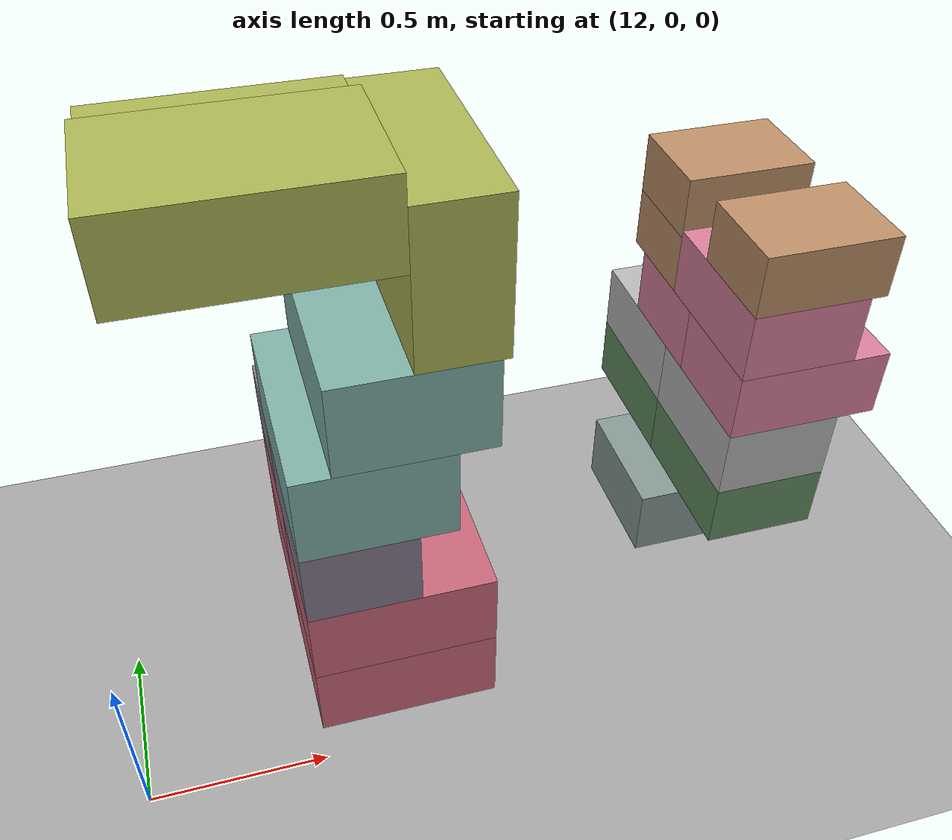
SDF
<sdf version="1.10">
 <world name="pallet_towers">
  <model name="ground_plane">
   <static>true</static>
   <link name="link">
    <collision name="collision">
     <geometry><plane><normal>0 0 1</normal><size>30 30</size></plane></geometry>
     <surface>
      <friction><ode><mu>0.35</mu><mu2>0.35</mu2></ode></friction>
      <bounce><restitution_coefficient>0</restitution_coefficient><threshold>100000</threshold></bounce>
      <contact><ode><kp>1000000</kp><kd>100</kd><max_vel>1</max_vel><min_depth>0.0005</min_depth></ode></contact>
     </surface>
    </collision>
    <visual name="visual">
     <geometry><plane><normal>0 0 1</normal><size>30 30</size></plane></geometry>
     <material><ambient>0.65 0.65 0.65 1</ambient><diffuse>0.65 0.65 0.65 1</diffuse></material>
    </visual>
   </link>
  </model>
  <model name="box_p08_0001_CARROT_001_CARROT">
   <static>false</static>
   <pose>12.75 0.6 0.259 0 0 0</pose>
   <link name="body">
    <inertial>
     <mass>12</mass>
     <inertia><ixx>0.2129</ixx><ixy>0</ixy><ixz>0</ixz><iyy>0.3029</iyy><iyz>0</iyz><izz>0.41</izz></inertia>
    </inertial>
    <collision name="collision">
     <geometry><box><size>0.5 0.4 0.23</size></box></geometry>
     <surface>
      <friction><ode><mu>0.35</mu><mu2>0.35</mu2></ode></friction>
      <bounce><restitution_coefficient>0</restitution_coefficient><threshold>100000</threshold></bounce>
      <contact><ode><kp>1000000</kp><kd>100</kd><max_vel>1</max_vel><min_depth>0.0005</min_depth></ode></contact>
     </surface>
    </collision>
    <visual name="visual">
     <geometry><box><size>0.5 0.4 0.23</size></box></geometry>
     <material>
      <ambient>0.784313725 0.4 0.474509804 1</ambient>
      <diffuse>0.784313725 0.4 0.474509804 1</diffuse>
      <specular>0.05 0.05 0.05 1</specular>
     </material>
    </visual>
   </link>
  </model>
  <model name="box_p08_0002_CARROT_002_CARROT">
   <static>false</static>
   <pose>12.75 0.2 0.259 0 0 0</pose>
   <link name="body">
    <inertial>
     <mass>12</mass>
     <inertia><ixx>0.2129</ixx><ixy>0</ixy><ixz>0</ixz><iyy>0.3029</iyy><iyz>0</iyz><izz>0.41</izz></inertia>
    </inertial>
    <collision name="collision">
     <geometry><box><size>0.5 0.4 0.23</size></box></geometry>
     <surface>
      <friction><ode><mu>0.35</mu><mu2>0.35</mu2></ode></friction>
      <bounce><restitution_coefficient>0</restitution_coefficient><threshold>100000</threshold></bounce>
      <contact><ode><kp>1000000</kp><kd>100</kd><max_vel>1</max_vel><min_depth>0.0005</min_depth></ode></contact>
     </surface>
    </collision>
    <visual name="visual">
     <geometry><box><size>0.5 0.4 0.23</size></box></geometry>
     <material>
      <ambient>0.784313725 0.4 0.474509804 1</ambient>
      <diffuse>0.784313725 0.4 0.474509804 1</diffuse>
      <specular>0.05 0.05 0.05 1</specular>
     </material>
    </visual>
   </link>
  </model>
  <model name="box_p08_0005_CARROT_005_CARROT">
   <static>false</static>
   <pose>12.75 0.2 0.489 0 0 0</pose>
   <link name="body">
    <inertial>
     <mass>12</mass>
     <inertia><ixx>0.2129</ixx><ixy>0</ixy><ixz>0</ixz><iyy>0.3029</iyy><iyz>0</iyz><izz>0.41</izz></inertia>
    </inertial>
    <collision name="collision">
     <geometry><box><size>0.5 0.4 0.23</size></box></geometry>
     <surface>
      <friction><ode><mu>0.35</mu><mu2>0.35</mu2></ode></friction>
      <bounce><restitution_coefficient>0</restitution_coefficient><threshold>100000</threshold></bounce>
      <contact><ode><kp>1000000</kp><kd>100</kd><max_vel>1</max_vel><min_depth>0.0005</min_depth></ode></contact>
     </surface>
    </collision>
    <visual name="visual">
     <geometry><box><size>0.5 0.4 0.23</size></box></geometry>
     <material>
      <ambient>0.784313725 0.4 0.474509804 1</ambient>
      <diffuse>0.784313725 0.4 0.474509804 1</diffuse>
      <specular>0.05 0.05 0.05 1</specular>
     </material>
    </visual>
   </link>
  </model>
  <model name="box_p08_0006_CARROT_006_CARROT">
   <static>false</static>
   <pose>12.75 0.6 0.489 0 0 0</pose>
   <link name="body">
    <inertial>
     <mass>12</mass>
     <inertia><ixx>0.2129</ixx><ixy>0</ixy><ixz>0</ixz><iyy>0.3029</iyy><iyz>0</iyz><izz>0.41</izz></inertia>
    </inertial>
    <collision name="collision">
     <geometry><box><size>0.5 0.4 0.23</size></box></geometry>
     <surface>
      <friction><ode><mu>0.35</mu><mu2>0.35</mu2></ode></friction>
      <bounce><restitution_coefficient>0</restitution_coefficient><threshold>100000</threshold></bounce>
      <contact><ode><kp>1000000</kp><kd>100</kd><max_vel>1</max_vel><min_depth>0.0005</min_depth></ode></contact>
     </surface>
    </collision>
    <visual name="visual">
     <geometry><box><size>0.5 0.4 0.23</size></box></geometry>
     <material>
      <ambient>0.784313725 0.4 0.474509804 1</ambient>
      <diffuse>0.784313725 0.4 0.474509804 1</diffuse>
      <specular>0.05 0.05 0.05 1</specular>
     </material>
    </visual>
   </link>
  </model>
  <model name="box_p08_0010_CUCUMBER_004_CUCUMBER">
   <static>false</static>
   <pose>12.65 0.25 0.714 0 0 0</pose>
   <link name="body">
    <inertial>
     <mass>8</mass>
     <inertia>
      <ixx>0.198933333</ixx>
      <ixy>0</ixy>
      <ixz>0</ixz>
      <iyy>0.0922666667</iyy>
      <iyz>0</iyz>
      <izz>0.226666667</izz>
     </inertia>
    </inertial>
    <collision name="collision">
     <geometry><box><size>0.3 0.5 0.22</size></box></geometry>
     <surface>
      <friction><ode><mu>0.35</mu><mu2>0.35</mu2></ode></friction>
      <bounce><restitution_coefficient>0</restitution_coefficient><threshold>100000</threshold></bounce>
      <contact><ode><kp>1000000</kp><kd>100</kd><max_vel>1</max_vel><min_depth>0.0005</min_depth></ode></contact>
     </surface>
    </collision>
    <visual name="visual">
     <geometry><box><size>0.3 0.5 0.22</size></box></geometry>
     <material>
      <ambient>0.517647059 0.478431373 0.552941176 1</ambient>
      <diffuse>0.517647059 0.478431373 0.552941176 1</diffuse>
      <specular>0.05 0.05 0.05 1</specular>
     </material>
    </visual>
   </link>
  </model>
  <model name="box_p08_0011_CUCUMBER_005_CUCUMBER">
   <static>false</static>
   <pose>12.75 0.65 0.714 0 0 0</pose>
   <link name="body">
    <inertial>
     <mass>8</mass>
     <inertia>
      <ixx>0.0922666667</ixx>
      <ixy>0</ixy>
      <ixz>0</ixz>
      <iyy>0.198933333</iyy>
      <iyz>0</iyz>
      <izz>0.226666667</izz>
     </inertia>
    </inertial>
    <collision name="collision">
     <geometry><box><size>0.5 0.3 0.22</size></box></geometry>
     <surface>
      <friction><ode><mu>0.35</mu><mu2>0.35</mu2></ode></friction>
      <bounce><restitution_coefficient>0</restitution_coefficient><threshold>100000</threshold></bounce>
      <contact><ode><kp>1000000</kp><kd>100</kd><max_vel>1</max_vel><min_depth>0.0005</min_depth></ode></contact>
     </surface>
    </collision>
    <visual name="visual">
     <geometry><box><size>0.5 0.3 0.22</size></box></geometry>
     <material>
      <ambient>0.517647059 0.478431373 0.552941176 1</ambient>
      <diffuse>0.517647059 0.478431373 0.552941176 1</diffuse>
      <specular>0.05 0.05 0.05 1</specular>
     </material>
    </visual>
   </link>
  </model>
  <model name="box_p08_0013_LETTUCE_001_LETTUCE">
   <static>false</static>
   <pose>12.7 0.3 0.949 0 0 0</pose>
   <link name="body">
    <inertial>
     <mass>5</mass>
     <inertia>
      <ixx>0.176041667</ixx>
      <ixy>0</ixy>
      <ixz>0</ixz>
      <iyy>0.0927083333</iyy>
      <iyz>0</iyz>
      <izz>0.216666667</izz>
     </inertia>
    </inertial>
    <collision name="collision">
     <geometry><box><size>0.4 0.6 0.25</size></box></geometry>
     <surface>
      <friction><ode><mu>0.35</mu><mu2>0.35</mu2></ode></friction>
      <bounce><restitution_coefficient>0</restitution_coefficient><threshold>100000</threshold></bounce>
      <contact><ode><kp>1000000</kp><kd>100</kd><max_vel>1</max_vel><min_depth>0.0005</min_depth></ode></contact>
     </surface>
    </collision>
    <visual name="visual">
     <geometry><box><size>0.4 0.6 0.25</size></box></geometry>
     <material>
      <ambient>0.498039216 0.690196078 0.650980392 1</ambient>
      <diffuse>0.498039216 0.690196078 0.650980392 1</diffuse>
      <specular>0.05 0.05 0.05 1</specular>
     </material>
    </visual>
   </link>
  </model>
  <model name="box_p08_0016_LETTUCE_004_LETTUCE">
   <static>false</static>
   <pose>12.8 0.3 1.199 0 0 0</pose>
   <link name="body">
    <inertial>
     <mass>5</mass>
     <inertia>
      <ixx>0.176041667</ixx>
      <ixy>0</ixy>
      <ixz>0</ixz>
      <iyy>0.0927083333</iyy>
      <iyz>0</iyz>
      <izz>0.216666667</izz>
     </inertia>
    </inertial>
    <collision name="collision">
     <geometry><box><size>0.4 0.6 0.25</size></box></geometry>
     <surface>
      <friction><ode><mu>0.35</mu><mu2>0.35</mu2></ode></friction>
      <bounce><restitution_coefficient>0</restitution_coefficient><threshold>100000</threshold></bounce>
      <contact><ode><kp>1000000</kp><kd>100</kd><max_vel>1</max_vel><min_depth>0.0005</min_depth></ode></contact>
     </surface>
    </collision>
    <visual name="visual">
     <geometry><box><size>0.4 0.6 0.25</size></box></geometry>
     <material>
      <ambient>0.498039216 0.690196078 0.650980392 1</ambient>
      <diffuse>0.498039216 0.690196078 0.650980392 1</diffuse>
      <specular>0.05 0.05 0.05 1</specular>
     </material>
    </visual>
   </link>
  </model>
  <model name="box_p08_0019_ORANGE_001_ORANGE">
   <static>false</static>
   <pose>12.5 0.2 1.684 0 0 0</pose>
   <link name="body">
    <inertial>
     <mass>13</mass>
     <inertia>
      <ixx>0.225766667</ixx>
      <ixy>0</ixy>
      <ixz>0</ixz>
      <iyy>0.442433333</iyy>
      <iyz>0</iyz>
      <izz>0.563333333</izz>
     </inertia>
    </inertial>
    <collision name="collision">
     <geometry><box><size>0.6 0.4 0.22</size></box></geometry>
     <surface>
      <friction><ode><mu>0.35</mu><mu2>0.35</mu2></ode></friction>
      <bounce><restitution_coefficient>0</restitution_coefficient><threshold>100000</threshold></bounce>
      <contact><ode><kp>1000000</kp><kd>100</kd><max_vel>1</max_vel><min_depth>0.0005</min_depth></ode></contact>
     </surface>
    </collision>
    <visual name="visual">
     <geometry><box><size>0.6 0.4 0.22</size></box></geometry>
     <material>
      <ambient>0.670588235 0.705882353 0.329411765 1</ambient>
      <diffuse>0.670588235 0.705882353 0.329411765 1</diffuse>
      <specular>0.05 0.05 0.05 1</specular>
     </material>
    </visual>
   </link>
  </model>
  <model name="box_p08_0021_ORANGE_003_ORANGE">
   <static>false</static>
   <pose>12.5 0.51 1.524 0 0 0</pose>
   <link name="body">
    <inertial>
     <mass>13</mass>
     <inertia>
      <ixx>0.225766667</ixx>
      <ixy>0</ixy>
      <ixz>0</ixz>
      <iyy>0.563333333</iyy>
      <iyz>0</iyz>
      <izz>0.442433333</izz>
     </inertia>
    </inertial>
    <collision name="collision">
     <geometry><box><size>0.6 0.22 0.4</size></box></geometry>
     <surface>
      <friction><ode><mu>0.35</mu><mu2>0.35</mu2></ode></friction>
      <bounce><restitution_coefficient>0</restitution_coefficient><threshold>100000</threshold></bounce>
      <contact><ode><kp>1000000</kp><kd>100</kd><max_vel>1</max_vel><min_depth>0.0005</min_depth></ode></contact>
     </surface>
    </collision>
    <visual name="visual">
     <geometry><box><size>0.6 0.22 0.4</size></box></geometry>
     <material>
      <ambient>0.670588235 0.705882353 0.329411765 1</ambient>
      <diffuse>0.670588235 0.705882353 0.329411765 1</diffuse>
      <specular>0.05 0.05 0.05 1</specular>
     </material>
    </visual>
   </link>
  </model>
  <model name="box_p08_0022_ORANGE_004_ORANGE">
   <static>false</static>
   <pose>12.91 0.3 1.524 0 0 0</pose>
   <link name="body">
    <inertial>
     <mass>13</mass>
     <inertia>
      <ixx>0.563333333</ixx>
      <ixy>0</ixy>
      <ixz>0</ixz>
      <iyy>0.225766667</iyy>
      <iyz>0</iyz>
      <izz>0.442433333</izz>
     </inertia>
    </inertial>
    <collision name="collision">
     <geometry><box><size>0.22 0.6 0.4</size></box></geometry>
     <surface>
      <friction><ode><mu>0.35</mu><mu2>0.35</mu2></ode></friction>
      <bounce><restitution_coefficient>0</restitution_coefficient><threshold>100000</threshold></bounce>
      <contact><ode><kp>1000000</kp><kd>100</kd><max_vel>1</max_vel><min_depth>0.0005</min_depth></ode></contact>
     </surface>
    </collision>
    <visual name="visual">
     <geometry><box><size>0.22 0.6 0.4</size></box></geometry>
     <material>
      <ambient>0.670588235 0.705882353 0.329411765 1</ambient>
      <diffuse>0.670588235 0.705882353 0.329411765 1</diffuse>
      <specular>0.05 0.05 0.05 1</specular>
     </material>
    </visual>
   </link>
  </model>
  <model name="box_p09_0003_PEAR_001_PEAR">
   <static>false</static>
   <pose>13.85 0.6 0.254 0 0 0</pose>
   <link name="body">
    <inertial>
     <mass>11</mass>
     <inertia>
      <ixx>0.191033333</ixx>
      <ixy>0</ixy>
      <ixz>0</ixz>
      <iyy>0.273533333</iyy>
      <iyz>0</iyz>
      <izz>0.375833333</izz>
     </inertia>
    </inertial>
    <collision name="collision">
     <geometry><box><size>0.5 0.4 0.22</size></box></geometry>
     <surface>
      <friction><ode><mu>0.35</mu><mu2>0.35</mu2></ode></friction>
      <bounce><restitution_coefficient>0</restitution_coefficient><threshold>100000</threshold></bounce>
      <contact><ode><kp>1000000</kp><kd>100</kd><max_vel>1</max_vel><min_depth>0.0005</min_depth></ode></contact>
     </surface>
    </collision>
    <visual name="visual">
     <geometry><box><size>0.5 0.4 0.22</size></box></geometry>
     <material>
      <ambient>0.521568627 0.6 0.580392157 1</ambient>
      <diffuse>0.521568627 0.6 0.580392157 1</diffuse>
      <specular>0.05 0.05 0.05 1</specular>
     </material>
    </visual>
   </link>
  </model>
  <model name="box_p09_0011_AVOCADO_003_AVOCADO">
   <static>false</static>
   <pose>13.75 0.2 0.674 0 0 0</pose>
   <link name="body">
    <inertial>
     <mass>6.5</mass>
     <inertia>
      <ixx>0.104216667</ixx>
      <ixy>0</ixy>
      <ixz>0</ixz>
      <iyy>0.0663</iyy>
      <iyz>0</iyz>
      <izz>0.135416667</izz>
     </inertia>
    </inertial>
    <collision name="collision">
     <geometry><box><size>0.3 0.4 0.18</size></box></geometry>
     <surface>
      <friction><ode><mu>0.35</mu><mu2>0.35</mu2></ode></friction>
      <bounce><restitution_coefficient>0</restitution_coefficient><threshold>100000</threshold></bounce>
      <contact><ode><kp>1000000</kp><kd>100</kd><max_vel>1</max_vel><min_depth>0.0005</min_depth></ode></contact>
     </surface>
    </collision>
    <visual name="visual">
     <geometry><box><size>0.3 0.4 0.18</size></box></geometry>
     <material>
      <ambient>0.380392157 0.545098039 0.37254902 1</ambient>
      <diffuse>0.380392157 0.545098039 0.37254902 1</diffuse>
      <specular>0.05 0.05 0.05 1</specular>
     </material>
    </visual>
   </link>
  </model>
  <model name="box_p09_0012_AVOCADO_004_AVOCADO">
   <static>false</static>
   <pose>13.75 0.6 0.674 0 0 0</pose>
   <link name="body">
    <inertial>
     <mass>6.5</mass>
     <inertia>
      <ixx>0.104216667</ixx>
      <ixy>0</ixy>
      <ixz>0</ixz>
      <iyy>0.0663</iyy>
      <iyz>0</iyz>
      <izz>0.135416667</izz>
     </inertia>
    </inertial>
    <collision name="collision">
     <geometry><box><size>0.3 0.4 0.18</size></box></geometry>
     <surface>
      <friction><ode><mu>0.35</mu><mu2>0.35</mu2></ode></friction>
      <bounce><restitution_coefficient>0</restitution_coefficient><threshold>100000</threshold></bounce>
      <contact><ode><kp>1000000</kp><kd>100</kd><max_vel>1</max_vel><min_depth>0.0005</min_depth></ode></contact>
     </surface>
    </collision>
    <visual name="visual">
     <geometry><box><size>0.3 0.4 0.18</size></box></geometry>
     <material>
      <ambient>0.380392157 0.545098039 0.37254902 1</ambient>
      <diffuse>0.380392157 0.545098039 0.37254902 1</diffuse>
      <specular>0.05 0.05 0.05 1</specular>
     </material>
    </visual>
   </link>
  </model>
  <model name="box_p09_0019_SOUP_005_SOUP">
   <static>false</static>
   <pose>13.75 0.2 0.859 0 0 0</pose>
   <link name="body">
    <inertial>
     <mass>12</mass>
     <inertia><ixx>0.1961</ixx><ixy>0</ixy><ixz>0</ixz><iyy>0.1261</iyy><iyz>0</iyz><izz>0.25</izz></inertia>
    </inertial>
    <collision name="collision">
     <geometry><box><size>0.3 0.4 0.19</size></box></geometry>
     <surface>
      <friction><ode><mu>0.35</mu><mu2>0.35</mu2></ode></friction>
      <bounce><restitution_coefficient>0</restitution_coefficient><threshold>100000</threshold></bounce>
      <contact><ode><kp>1000000</kp><kd>100</kd><max_vel>1</max_vel><min_depth>0.0005</min_depth></ode></contact>
     </surface>
    </collision>
    <visual name="visual">
     <geometry><box><size>0.3 0.4 0.19</size></box></geometry>
     <material>
      <ambient>0.721568627 0.717647059 0.717647059 1</ambient>
      <diffuse>0.721568627 0.717647059 0.717647059 1</diffuse>
      <specular>0.05 0.05 0.05 1</specular>
     </material>
    </visual>
   </link>
  </model>
  <model name="box_p09_0020_SOUP_006_SOUP">
   <static>false</static>
   <pose>13.75 0.6 0.859 0 0 0</pose>
   <link name="body">
    <inertial>
     <mass>12</mass>
     <inertia><ixx>0.1961</ixx><ixy>0</ixy><ixz>0</ixz><iyy>0.1261</iyy><iyz>0</iyz><izz>0.25</izz></inertia>
    </inertial>
    <collision name="collision">
     <geometry><box><size>0.3 0.4 0.19</size></box></geometry>
     <surface>
      <friction><ode><mu>0.35</mu><mu2>0.35</mu2></ode></friction>
      <bounce><restitution_coefficient>0</restitution_coefficient><threshold>100000</threshold></bounce>
      <contact><ode><kp>1000000</kp><kd>100</kd><max_vel>1</max_vel><min_depth>0.0005</min_depth></ode></contact>
     </surface>
    </collision>
    <visual name="visual">
     <geometry><box><size>0.3 0.4 0.19</size></box></geometry>
     <material>
      <ambient>0.721568627 0.717647059 0.717647059 1</ambient>
      <diffuse>0.721568627 0.717647059 0.717647059 1</diffuse>
      <specular>0.05 0.05 0.05 1</specular>
     </material>
    </visual>
   </link>
  </model>
  <model name="box_p09_0021_BEANS_001_BEANS">
   <static>false</static>
   <pose>13.8 0.15 1.044 0 0 0</pose>
   <link name="body">
    <inertial>
     <mass>11</mass>
     <inertia>
      <ixx>0.1122</ixx>
      <ixy>0</ixy>
      <ixz>0</ixz>
      <iyy>0.176366667</iyy>
      <iyz>0</iyz>
      <izz>0.229166667</izz>
     </inertia>
    </inertial>
    <collision name="collision">
     <geometry><box><size>0.4 0.3 0.18</size></box></geometry>
     <surface>
      <friction><ode><mu>0.35</mu><mu2>0.35</mu2></ode></friction>
      <bounce><restitution_coefficient>0</restitution_coefficient><threshold>100000</threshold></bounce>
      <contact><ode><kp>1000000</kp><kd>100</kd><max_vel>1</max_vel><min_depth>0.0005</min_depth></ode></contact>
     </surface>
    </collision>
    <visual name="visual">
     <geometry><box><size>0.4 0.3 0.18</size></box></geometry>
     <material>
      <ambient>0.847058824 0.498039216 0.607843137 1</ambient>
      <diffuse>0.847058824 0.498039216 0.607843137 1</diffuse>
      <specular>0.05 0.05 0.05 1</specular>
     </material>
    </visual>
   </link>
  </model>
  <model name="box_p09_0022_BEANS_002_BEANS">
   <static>false</static>
   <pose>13.8 0.45 1.044 0 0 0</pose>
   <link name="body">
    <inertial>
     <mass>11</mass>
     <inertia>
      <ixx>0.1122</ixx>
      <ixy>0</ixy>
      <ixz>0</ixz>
      <iyy>0.176366667</iyy>
      <iyz>0</iyz>
      <izz>0.229166667</izz>
     </inertia>
    </inertial>
    <collision name="collision">
     <geometry><box><size>0.4 0.3 0.18</size></box></geometry>
     <surface>
      <friction><ode><mu>0.35</mu><mu2>0.35</mu2></ode></friction>
      <bounce><restitution_coefficient>0</restitution_coefficient><threshold>100000</threshold></bounce>
      <contact><ode><kp>1000000</kp><kd>100</kd><max_vel>1</max_vel><min_depth>0.0005</min_depth></ode></contact>
     </surface>
    </collision>
    <visual name="visual">
     <geometry><box><size>0.4 0.3 0.18</size></box></geometry>
     <material>
      <ambient>0.847058824 0.498039216 0.607843137 1</ambient>
      <diffuse>0.847058824 0.498039216 0.607843137 1</diffuse>
      <specular>0.05 0.05 0.05 1</specular>
     </material>
    </visual>
   </link>
  </model>
  <model name="box_p09_0025_BEANS_005_BEANS">
   <static>false</static>
   <pose>13.75 0.2 1.224 0 0 0</pose>
   <link name="body">
    <inertial>
     <mass>11</mass>
     <inertia>
      <ixx>0.176366667</ixx>
      <ixy>0</ixy>
      <ixz>0</ixz>
      <iyy>0.1122</iyy>
      <iyz>0</iyz>
      <izz>0.229166667</izz>
     </inertia>
    </inertial>
    <collision name="collision">
     <geometry><box><size>0.3 0.4 0.18</size></box></geometry>
     <surface>
      <friction><ode><mu>0.35</mu><mu2>0.35</mu2></ode></friction>
      <bounce><restitution_coefficient>0</restitution_coefficient><threshold>100000</threshold></bounce>
      <contact><ode><kp>1000000</kp><kd>100</kd><max_vel>1</max_vel><min_depth>0.0005</min_depth></ode></contact>
     </surface>
    </collision>
    <visual name="visual">
     <geometry><box><size>0.3 0.4 0.18</size></box></geometry>
     <material>
      <ambient>0.847058824 0.498039216 0.607843137 1</ambient>
      <diffuse>0.847058824 0.498039216 0.607843137 1</diffuse>
      <specular>0.05 0.05 0.05 1</specular>
     </material>
    </visual>
   </link>
  </model>
  <model name="box_p09_0028_TUNA_002_TUNA">
   <static>false</static>
   <pose>13.77 0.53 1.214 0 0 0</pose>
   <link name="body">
    <inertial>
     <mass>10</mass>
     <inertia>
      <ixx>0.0776666667</ixx>
      <ixy>0</ixy>
      <ixz>0</ixz>
      <iyy>0.117666667</iyy>
      <iyz>0</iyz>
      <izz>0.152666667</izz>
     </inertia>
    </inertial>
    <collision name="collision">
     <geometry><box><size>0.34 0.26 0.16</size></box></geometry>
     <surface>
      <friction><ode><mu>0.35</mu><mu2>0.35</mu2></ode></friction>
      <bounce><restitution_coefficient>0</restitution_coefficient><threshold>100000</threshold></bounce>
      <contact><ode><kp>1000000</kp><kd>100</kd><max_vel>1</max_vel><min_depth>0.0005</min_depth></ode></contact>
     </surface>
    </collision>
    <visual name="visual">
     <geometry><box><size>0.34 0.26 0.16</size></box></geometry>
     <material>
      <ambient>0.737254902 0.560784314 0.4 1</ambient>
      <diffuse>0.737254902 0.560784314 0.4 1</diffuse>
      <specular>0.05 0.05 0.05 1</specular>
     </material>
    </visual>
   </link>
  </model>
  <model name="box_p09_0030_TUNA_004_TUNA">
   <static>false</static>
   <pose>13.77 0.53 1.374 0 0 0</pose>
   <link name="body">
    <inertial>
     <mass>10</mass>
     <inertia>
      <ixx>0.0776666667</ixx>
      <ixy>0</ixy>
      <ixz>0</ixz>
      <iyy>0.117666667</iyy>
      <iyz>0</iyz>
      <izz>0.152666667</izz>
     </inertia>
    </inertial>
    <collision name="collision">
     <geometry><box><size>0.34 0.26 0.16</size></box></geometry>
     <surface>
      <friction><ode><mu>0.35</mu><mu2>0.35</mu2></ode></friction>
      <bounce><restitution_coefficient>0</restitution_coefficient><threshold>100000</threshold></bounce>
      <contact><ode><kp>1000000</kp><kd>100</kd><max_vel>1</max_vel><min_depth>0.0005</min_depth></ode></contact>
     </surface>
    </collision>
    <visual name="visual">
     <geometry><box><size>0.34 0.26 0.16</size></box></geometry>
     <material>
      <ambient>0.737254902 0.560784314 0.4 1</ambient>
      <diffuse>0.737254902 0.560784314 0.4 1</diffuse>
      <specular>0.05 0.05 0.05 1</specular>
     </material>
    </visual>
   </link>
  </model>
  <model name="box_p09_0031_TUNA_005_TUNA">
   <static>false</static>
   <pose>13.77 0.13 1.394 0 0 0</pose>
   <link name="body">
    <inertial>
     <mass>10</mass>
     <inertia>
      <ixx>0.0776666667</ixx>
      <ixy>0</ixy>
      <ixz>0</ixz>
      <iyy>0.117666667</iyy>
      <iyz>0</iyz>
      <izz>0.152666667</izz>
     </inertia>
    </inertial>
    <collision name="collision">
     <geometry><box><size>0.34 0.26 0.16</size></box></geometry>
     <surface>
      <friction><ode><mu>0.35</mu><mu2>0.35</mu2></ode></friction>
      <bounce><restitution_coefficient>0</restitution_coefficient><threshold>100000</threshold></bounce>
      <contact><ode><kp>1000000</kp><kd>100</kd><max_vel>1</max_vel><min_depth>0.0005</min_depth></ode></contact>
     </surface>
    </collision>
    <visual name="visual">
     <geometry><box><size>0.34 0.26 0.16</size></box></geometry>
     <material>
      <ambient>0.737254902 0.560784314 0.4 1</ambient>
      <diffuse>0.737254902 0.560784314 0.4 1</diffuse>
      <specular>0.05 0.05 0.05 1</specular>
     </material>
    </visual>
   </link>
  </model>
 </world>
</sdf>
